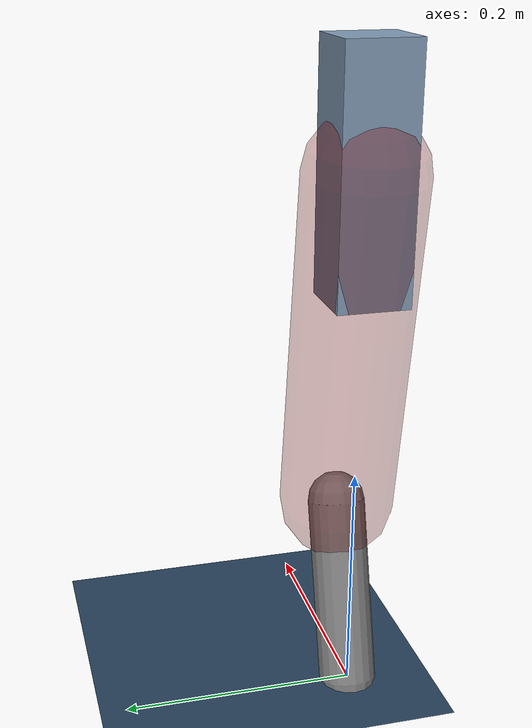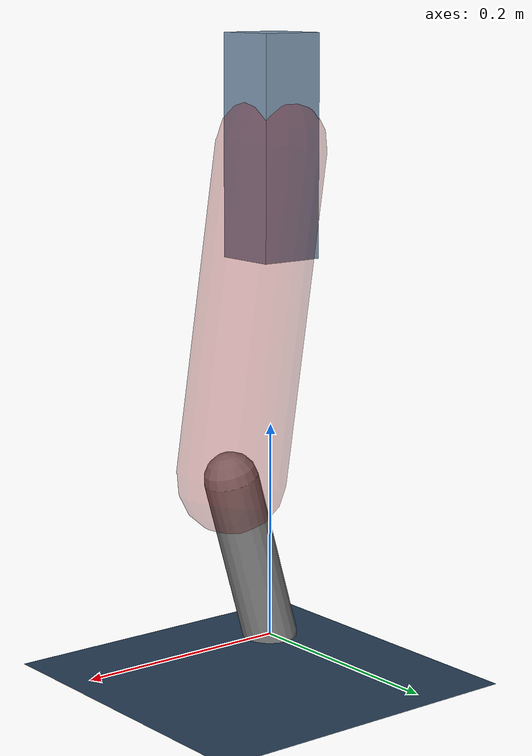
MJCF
<mujoco model="Hopper2D">
	<compiler inertiafromgeom="true" angle="radian" />
	<option timestep="0.001" integrator="implicit" cone="elliptic" solver="Newton" tolerance="1e-10" />

	<default>
		<geom contype="1" conaffinity="1" condim="3" friction="2 0.005 0.0001" solref="0.005 1" />
		<joint limited="true" damping="0.1" />
	</default>

	<asset>
		<texture name="skybox" type="skybox" builtin="gradient" rgb1=".4 .6 .8" rgb2="0 0 0" width="800" height="800" />
		<texture name="grid" type="2d" builtin="checker" rgb1=".1 .2 .3" rgb2=".2 .3 .4" width="300" height="300" mark="edge" markrgb=".2 .3 .4" />
		<material name="ground" texture="grid" texrepeat="1 1" texuniform="true" reflectance="0.1" />
		<material name="leg" rgba="0.5 0.6 0.7 1" />
	</asset>

	<worldbody>

		<geom name="floor" type="plane" size="5 5 0.25" material="ground" />

		<light directional="false" diffuse="0.8 0.8 0.8" specular="0.3 0.3 0.3" pos="0 0 2" dir="0 0 -1" />
		<light mode="targetbodycom" target="base" directional="false" diffuse="0.8 0.8 0.8" specular="0.3 0.3 0.3" pos="0 0 2" dir="0 0 -1" />

		<camera name="fixed" pos="0 -2 1" xyaxes="1 0 0 0 0 1" />
		<camera name="tracking" mode="trackcom" pos="0 -3 1" />

		<body name="root" pos="0 0 0.4536344995975361">
			<joint name="slide_x" type="slide" axis="1 0 0" range="-100 100" />
			<joint name="slide_z" type="slide" axis="0 0 1" range="0 10" />

			<body name="base" pos="0 0 0">
				<geom name="torso" type="box" size="0.03 0.03 0.1" mass="3.1310000000000002" material="leg" />

				<body name="link1" pos="0 0 0" euler="0 1.418787381152158 0">
					<joint type="hinge" axis="0 -1 0" pos="0 0 0" name="hinge1" limited="true" range="-3.14 3.14" stiffness="0" damping="0.1" />
					<geom name="thigh" type="capsule" fromto="0 0 0 0.30112071048408484 0 0" size="0.05" rgba="0.5 0 0 0.3" mass="0.991725918307029" />

					<body name="link2" pos="0.30112071048408484 0 0" euler="0 0.43639989487849934 0">
						<joint type="hinge" axis="0 -1 0" pos="0 0 0" name="hinge2" limited="true" range="-3.14 3.14" stiffness="0" damping="0.1" />
						<geom name="shank" type="capsule" fromto="0 0 0 0.16251378911345124 0 0" size="0.025" mass="0.3687624102021061" />

					</body>
				</body>
			</body>
		</body>
	</worldbody>

	<actuator>
		<motor name="torque1" joint="hinge1" ctrlrange="-128.56198638242128 128.56198638242128" ctrllimited="true" gear="1" />
		<motor name="torque2" joint="hinge2" ctrlrange="-130.5295364944142 130.5295364944142" ctrllimited="true" gear="1" />
	</actuator>
</mujoco>
